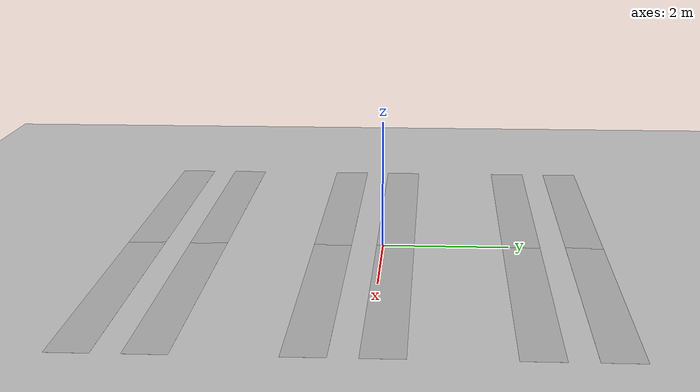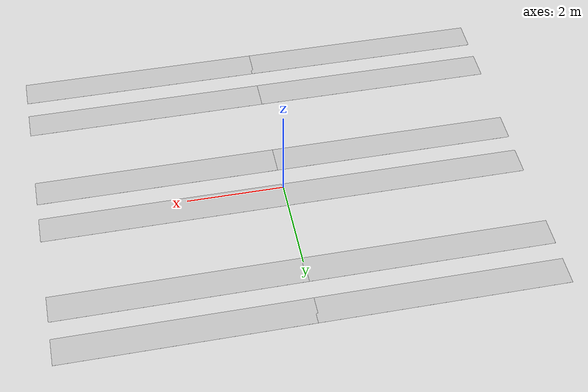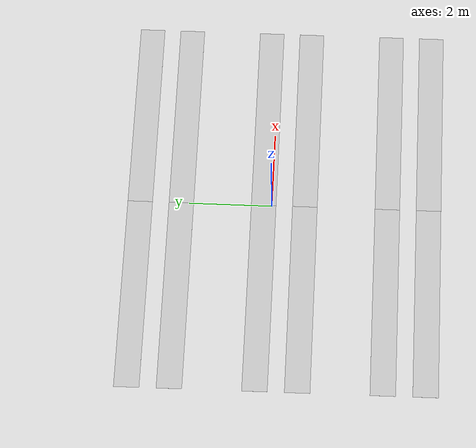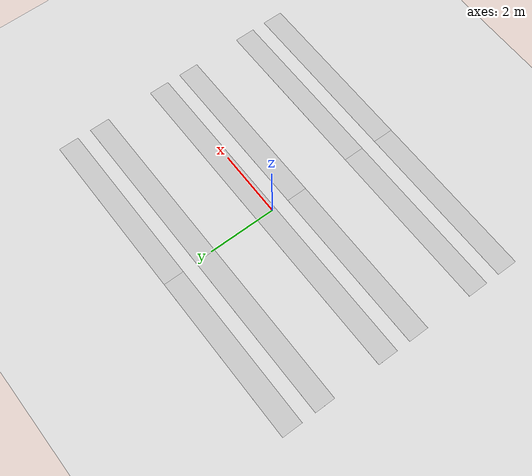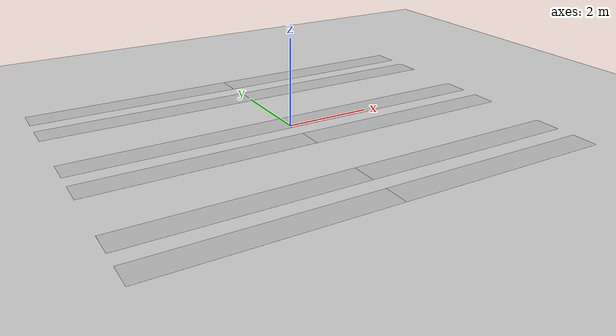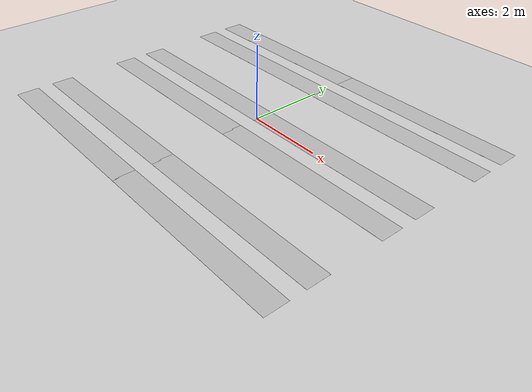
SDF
<sdf version="1.6">
 <world name="default">
  <include><uri>model://sun</uri></include>
  <include><uri>model://cmp9767m_ground_3</uri></include>
  <include><uri>model://cmp9767m_cropweed</uri><pose>-2.5 -3.8 0 0 0 0</pose><name>row_1</name></include>
  <include><uri>model://cmp9767m_cropweed</uri><pose>2.5 -3.8 0 0 0 0</pose><name>row_2</name></include>
  <include><uri>model://cmp9767m_cropweed</uri><pose>-2.5 -2.8 0 0 0 0</pose><name>row_3</name></include>
  <include><uri>model://cmp9767m_cropweed</uri><pose>2.5 -2.8 0 0 0 0</pose><name>row_4</name></include>
  <physics type="ode">
   <real_time_update_rate>200</real_time_update_rate>
   <real_time_factor>1</real_time_factor>
   <max_step_size>0.005</max_step_size>
  </physics>
  <gravity>0 0 -9.8</gravity>
 </world>
</sdf>

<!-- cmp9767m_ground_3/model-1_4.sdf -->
<sdf version="1.4">
<model name="cmp9767m_ground_3">
  <static>true</static>
    <link name="dirt">
      <collision name="collision">
        <geometry>
          <plane>
            <normal>0 0 1</normal>
            <size>25 25</size>
          </plane>
        </geometry>
        <surface>
          <friction>
            <ode>
              <mu>100</mu>
              <mu2>100</mu2>
            </ode>
          </friction>
        </surface>
      </collision>
      <visual name="visual">
        <cast_shadows>false</cast_shadows>
        <geometry>
          <plane>
            <normal>0 0 1</normal>
            <size>25 25</size>
          </plane>
        </geometry>
        <material>
          <script>
            <uri>model://cmp9767m_ground_3/materials/scripts</uri>
            <uri>model://cmp9767m_ground_3/materials/textures</uri>
            <name>cmp9767m_ground_3/dirt</name>
          </script>
        </material>
      </visual>
    </link>
  </model>
</sdf>

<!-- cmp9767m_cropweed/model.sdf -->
<sdf version="1.4">
  <model name="cmp9767m_cropweed">
  <static>true</static>
    <link name="simple">
      <pose frame=''>0 0 0 0 0 0</pose>
      <collision name="collision">
        <geometry>
          <plane>
            <normal>0 0 1</normal>
            <size>5.04 0.6</size>
          </plane>
        </geometry>
        <surface>
          <friction>
            <ode>
              <mu>100</mu>
              <mu2>50</mu2>
            </ode>
          </friction>
        </surface>
      </collision>
      <visual name="visual">
        <cast_shadows>false</cast_shadows>
        <geometry>
          <plane>
            <normal>0 0 1</normal>
            <size>5.04 0.6</size>
          </plane>
        </geometry>
        <material>
          <script>
            <uri>model://cmp9767m_cropweed/materials/scripts</uri>
            <uri>model://cmp9767m_cropweed/materials/textures</uri>
            <name>cmp9767m_cropweed/simple</name>
          </script>
        </material>
      </visual>
    </link>
    <link name="realeasy">
      <pose frame=''>0 3 0 0 0 0</pose>
      <collision name="collision">
        <geometry>
          <plane>
            <normal>0 0 1</normal>
            <size>5.04 0.6</size>
          </plane>
        </geometry>
        <surface>
          <friction>
            <ode>
              <mu>100</mu>
              <mu2>50</mu2>
            </ode>
          </friction>
        </surface>
      </collision>
      <visual name="visual">
        <cast_shadows>false</cast_shadows>
        <geometry>
          <plane>
            <normal>0 0 1</normal>
            <size>5.04 0.6</size>
          </plane>
        </geometry>
        <material>
          <script>
            <uri>model://cmp9767m_cropweed/materials/scripts</uri>
            <uri>model://cmp9767m_cropweed/materials/textures</uri>
            <name>cmp9767m_cropweed/realeasy</name>
          </script>
        </material>
      </visual>
    </link>
    <link name="realhard">
      <pose frame=''>0 6 0 0 0 0</pose>
      <collision name="collision">
        <geometry>
          <plane>
            <normal>0 0 1</normal>
            <size>5.04 0.6</size>
          </plane>
        </geometry>
        <surface>
          <friction>
            <ode>
              <mu>100</mu>
              <mu2>50</mu2>
            </ode>
          </friction>
        </surface>
      </collision>
      <visual name="visual">
        <cast_shadows>false</cast_shadows>
        <geometry>
          <plane>
            <normal>0 0 1</normal>
            <size>5.04 0.6</size>
          </plane>
        </geometry>
        <material>
          <script>
            <uri>model://cmp9767m_cropweed/materials/scripts</uri>
            <uri>model://cmp9767m_cropweed/materials/textures</uri>
            <name>cmp9767m_cropweed/realhard</name>
          </script>
        </material>
      </visual>
    </link>

  </model>
</sdf>
